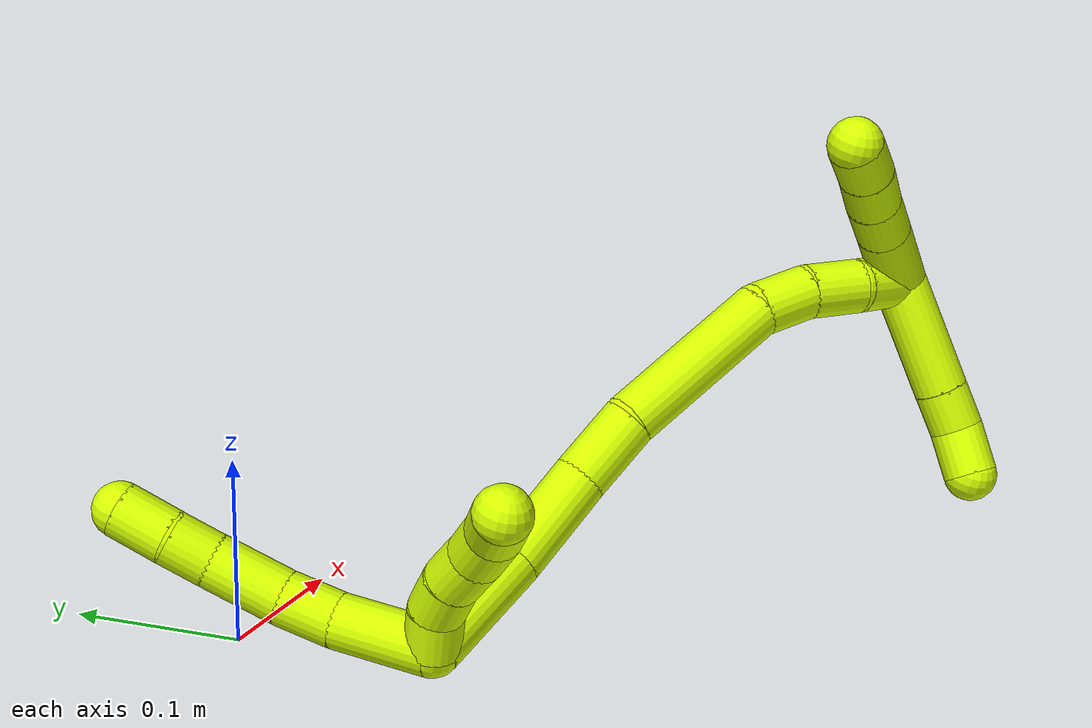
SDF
<sdf version="1.7">
 <world name="default">
  <model name="15">
   <static>0</static>
   <link name="15">
    <collision name="collision-cylinder-e_1_2_8">
     <pose>0.003756 0.021453 -0.003085 -1.71361 0.171584 -0.197861</pose>
     <geometry><cylinder><radius>0.0125</radius><length>0.043994</length></cylinder></geometry>
     <surface>
      <friction><ode><mu>1.16</mu><mu2>1.16</mu2><slip1>0</slip1><slip2>0</slip2></ode></friction>
      <contact><ode><kp>1e+06</kp><kd>1</kd><max_vel>0</max_vel><min_depth>0.001</min_depth></ode></contact>
     </surface>
    </collision>
    <visual name="visual-cylinder-e_1_2_8">
     <pose>0.003756 0.021453 -0.003085 -1.71361 0.171584 -0.197861</pose>
     <geometry><cylinder><radius>0.0125</radius><length>0.043994</length></cylinder></geometry>
     <material><ambient>0.835294 1 0 1</ambient></material>
    </visual>
    <collision name="collision-cylinder-e_2_8_9">
     <pose>0.008989 0.055665 -0.005696 -1.53371 0.115206 -0.11102</pose>
     <geometry><cylinder><radius>0.0125</radius><length>0.025704</length></cylinder></geometry>
     <surface>
      <friction><ode><mu>1.16</mu><mu2>1.16</mu2><slip1>0</slip1><slip2>0</slip2></ode></friction>
      <contact><ode><kp>1e+06</kp><kd>1</kd><max_vel>0</max_vel><min_depth>0.001</min_depth></ode></contact>
     </surface>
    </collision>
    <visual name="visual-cylinder-e_2_8_9">
     <pose>0.008989 0.055665 -0.005696 -1.53371 0.115206 -0.11102</pose>
     <geometry><cylinder><radius>0.0125</radius><length>0.025704</length></cylinder></geometry>
     <material><ambient>0.835294 1 0 1</ambient></material>
    </visual>
    <collision name="collision-cylinder-e_3_9_10">
     <pose>0.011753 0.085491 -0.002351 -1.40409 0.074189 -0.062756</pose>
     <geometry><cylinder><radius>0.0125</radius><length>0.034712</length></cylinder></geometry>
     <surface>
      <friction><ode><mu>1.16</mu><mu2>1.16</mu2><slip1>0</slip1><slip2>0</slip2></ode></friction>
      <contact><ode><kp>1e+06</kp><kd>1</kd><max_vel>0</max_vel><min_depth>0.001</min_depth></ode></contact>
     </surface>
    </collision>
    <visual name="visual-cylinder-e_3_9_10">
     <pose>0.011753 0.085491 -0.002351 -1.40409 0.074189 -0.062756</pose>
     <geometry><cylinder><radius>0.0125</radius><length>0.034712</length></cylinder></geometry>
     <material><ambient>0.835294 1 0 1</ambient></material>
    </visual>
    <collision name="collision-cylinder-e_4_10_11">
     <pose>0.012704 0.112626 0.00327 -1.30423 -0.032145 0.024545</pose>
     <geometry><cylinder><radius>0.0125</radius><length>0.020881</length></cylinder></geometry>
     <surface>
      <friction><ode><mu>1.16</mu><mu2>1.16</mu2><slip1>0</slip1><slip2>0</slip2></ode></friction>
      <contact><ode><kp>1e+06</kp><kd>1</kd><max_vel>0</max_vel><min_depth>0.001</min_depth></ode></contact>
     </surface>
    </collision>
    <visual name="visual-cylinder-e_4_10_11">
     <pose>0.012704 0.112626 0.00327 -1.30423 -0.032145 0.024545</pose>
     <geometry><cylinder><radius>0.0125</radius><length>0.020881</length></cylinder></geometry>
     <material><ambient>0.835294 1 0 1</ambient></material>
    </visual>
    <collision name="collision-cylinder-e_5_11_6">
     <pose>0.013619 0.134772 0.008286 -1.38523 0.101435 -0.084188</pose>
     <geometry><cylinder><radius>0.0125</radius><length>0.024709</length></cylinder></geometry>
     <surface>
      <friction><ode><mu>1.16</mu><mu2>1.16</mu2><slip1>0</slip1><slip2>0</slip2></ode></friction>
      <contact><ode><kp>1e+06</kp><kd>1</kd><max_vel>0</max_vel><min_depth>0.001</min_depth></ode></contact>
     </surface>
    </collision>
    <visual name="visual-cylinder-e_5_11_6">
     <pose>0.013619 0.134772 0.008286 -1.38523 0.101435 -0.084188</pose>
     <geometry><cylinder><radius>0.0125</radius><length>0.024709</length></cylinder></geometry>
     <material><ambient>0.835294 1 0 1</ambient></material>
    </visual>
    <collision name="collision-cylinder-e_1_2_12">
     <pose>-0.000443 0.001052 0.009935 -0.105538 -0.044275 0.002339</pose>
     <geometry><cylinder><radius>0.0125</radius><length>0.02</length></cylinder></geometry>
     <surface>
      <friction><ode><mu>1.16</mu><mu2>1.16</mu2><slip1>0</slip1><slip2>0</slip2></ode></friction>
      <contact><ode><kp>1e+06</kp><kd>1</kd><max_vel>0</max_vel><min_depth>0.001</min_depth></ode></contact>
     </surface>
    </collision>
    <visual name="visual-cylinder-e_1_2_12">
     <pose>-0.000443 0.001052 0.009935 -0.105538 -0.044275 0.002339</pose>
     <geometry><cylinder><radius>0.0125</radius><length>0.02</length></cylinder></geometry>
     <material><ambient>0.835294 1 0 1</ambient></material>
    </visual>
    <collision name="collision-cylinder-e_2_12_13">
     <pose>-0.002987 0.000169 0.029452 0.199292 -0.21179 -0.021253</pose>
     <geometry><cylinder><radius>0.0125</radius><length>0.02</length></cylinder></geometry>
     <surface>
      <friction><ode><mu>1.16</mu><mu2>1.16</mu2><slip1>0</slip1><slip2>0</slip2></ode></friction>
      <contact><ode><kp>1e+06</kp><kd>1</kd><max_vel>0</max_vel><min_depth>0.001</min_depth></ode></contact>
     </surface>
    </collision>
    <visual name="visual-cylinder-e_2_12_13">
     <pose>-0.002987 0.000169 0.029452 0.199292 -0.21179 -0.021253</pose>
     <geometry><cylinder><radius>0.0125</radius><length>0.02</length></cylinder></geometry>
     <material><ambient>0.835294 1 0 1</ambient></material>
    </visual>
    <collision name="collision-cylinder-e_3_13_14">
     <pose>-0.007268 -0.005521 0.048044 0.394937 -0.219622 -0.044111</pose>
     <geometry><cylinder><radius>0.0125</radius><length>0.02</length></cylinder></geometry>
     <surface>
      <friction><ode><mu>1.16</mu><mu2>1.16</mu2><slip1>0</slip1><slip2>0</slip2></ode></friction>
      <contact><ode><kp>1e+06</kp><kd>1</kd><max_vel>0</max_vel><min_depth>0.001</min_depth></ode></contact>
     </surface>
    </collision>
    <visual name="visual-cylinder-e_3_13_14">
     <pose>-0.007268 -0.005521 0.048044 0.394937 -0.219622 -0.044111</pose>
     <geometry><cylinder><radius>0.0125</radius><length>0.02</length></cylinder></geometry>
     <material><ambient>0.835294 1 0 1</ambient></material>
    </visual>
    <collision name="collision-cylinder-e_4_14_15">
     <pose>-0.012886 -0.012083 0.066013 0.303478 -0.351078 -0.05423</pose>
     <geometry><cylinder><radius>0.0125</radius><length>0.02</length></cylinder></geometry>
     <surface>
      <friction><ode><mu>1.16</mu><mu2>1.16</mu2><slip1>0</slip1><slip2>0</slip2></ode></friction>
      <contact><ode><kp>1e+06</kp><kd>1</kd><max_vel>0</max_vel><min_depth>0.001</min_depth></ode></contact>
     </surface>
    </collision>
    <visual name="visual-cylinder-e_4_14_15">
     <pose>-0.012886 -0.012083 0.066013 0.303478 -0.351078 -0.05423</pose>
     <geometry><cylinder><radius>0.0125</radius><length>0.02</length></cylinder></geometry>
     <material><ambient>0.835294 1 0 1</ambient></material>
    </visual>
    <collision name="collision-cylinder-e_5_15_5">
     <pose>-0.022118 -0.016129 0.08303 0.152793 -0.617908 -0.048853</pose>
     <geometry><cylinder><radius>0.0125</radius><length>0.02</length></cylinder></geometry>
     <surface>
      <friction><ode><mu>1.16</mu><mu2>1.16</mu2><slip1>0</slip1><slip2>0</slip2></ode></friction>
      <contact><ode><kp>1e+06</kp><kd>1</kd><max_vel>0</max_vel><min_depth>0.001</min_depth></ode></contact>
     </surface>
    </collision>
    <visual name="visual-cylinder-e_5_15_5">
     <pose>-0.022118 -0.016129 0.08303 0.152793 -0.617908 -0.048853</pose>
     <geometry><cylinder><radius>0.0125</radius><length>0.02</length></cylinder></geometry>
     <material><ambient>0.835294 1 0 1</ambient></material>
    </visual>
    <collision name="collision-cylinder-e_1_2_16">
     <pose>0.023472 -0.010215 0.011472 0.727483 0.991315 0.405981</pose>
     <geometry><cylinder><radius>0.0125</radius><length>0.056104</length></cylinder></geometry>
     <surface>
      <friction><ode><mu>1.16</mu><mu2>1.16</mu2><slip1>0</slip1><slip2>0</slip2></ode></friction>
      <contact><ode><kp>1e+06</kp><kd>1</kd><max_vel>0</max_vel><min_depth>0.001</min_depth></ode></contact>
     </surface>
    </collision>
    <visual name="visual-cylinder-e_1_2_16">
     <pose>0.023472 -0.010215 0.011472 0.727483 0.991315 0.405981</pose>
     <geometry><cylinder><radius>0.0125</radius><length>0.056104</length></cylinder></geometry>
     <material><ambient>0.835294 1 0 1</ambient></material>
    </visual>
    <collision name="collision-cylinder-e_2_16_17">
     <pose>0.063758 -0.028817 0.037531 0.521831 0.785006 0.220175</pose>
     <geometry><cylinder><radius>0.0125</radius><length>0.047572</length></cylinder></geometry>
     <surface>
      <friction><ode><mu>1.16</mu><mu2>1.16</mu2><slip1>0</slip1><slip2>0</slip2></ode></friction>
      <contact><ode><kp>1e+06</kp><kd>1</kd><max_vel>0</max_vel><min_depth>0.001</min_depth></ode></contact>
     </surface>
    </collision>
    <visual name="visual-cylinder-e_2_16_17">
     <pose>0.063758 -0.028817 0.037531 0.521831 0.785006 0.220175</pose>
     <geometry><cylinder><radius>0.0125</radius><length>0.047572</length></cylinder></geometry>
     <material><ambient>0.835294 1 0 1</ambient></material>
    </visual>
    <collision name="collision-cylinder-e_3_17_18">
     <pose>0.090845 -0.043917 0.063827 0.520569 0.650659 0.17919</pose>
     <geometry><cylinder><radius>0.0125</radius><length>0.033925</length></cylinder></geometry>
     <surface>
      <friction><ode><mu>1.16</mu><mu2>1.16</mu2><slip1>0</slip1><slip2>0</slip2></ode></friction>
      <contact><ode><kp>1e+06</kp><kd>1</kd><max_vel>0</max_vel><min_depth>0.001</min_depth></ode></contact>
     </surface>
    </collision>
    <visual name="visual-cylinder-e_3_17_18">
     <pose>0.090845 -0.043917 0.063827 0.520569 0.650659 0.17919</pose>
     <geometry><cylinder><radius>0.0125</radius><length>0.033925</length></cylinder></geometry>
     <material><ambient>0.835294 1 0 1</ambient></material>
    </visual>
    <collision name="collision-cylinder-e_4_18_19">
     <pose>0.129001 -0.071076 0.097041 0.760143 0.75429 0.313883</pose>
     <geometry><cylinder><radius>0.0125</radius><length>0.081436</length></cylinder></geometry>
     <surface>
      <friction><ode><mu>1.16</mu><mu2>1.16</mu2><slip1>0</slip1><slip2>0</slip2></ode></friction>
      <contact><ode><kp>1e+06</kp><kd>1</kd><max_vel>0</max_vel><min_depth>0.001</min_depth></ode></contact>
     </surface>
    </collision>
    <visual name="visual-cylinder-e_4_18_19">
     <pose>0.129001 -0.071076 0.097041 0.760143 0.75429 0.313883</pose>
     <geometry><cylinder><radius>0.0125</radius><length>0.081436</length></cylinder></geometry>
     <material><ambient>0.835294 1 0 1</ambient></material>
    </visual>
    <collision name="collision-cylinder-e_5_19_20">
     <pose>0.16505 -0.101001 0.122513 1.17451 0.671482 0.456425</pose>
     <geometry><cylinder><radius>0.0125</radius><length>0.026251</length></cylinder></geometry>
     <surface>
      <friction><ode><mu>1.16</mu><mu2>1.16</mu2><slip1>0</slip1><slip2>0</slip2></ode></friction>
      <contact><ode><kp>1e+06</kp><kd>1</kd><max_vel>0</max_vel><min_depth>0.001</min_depth></ode></contact>
     </surface>
    </collision>
    <visual name="visual-cylinder-e_5_19_20">
     <pose>0.16505 -0.101001 0.122513 1.17451 0.671482 0.456425</pose>
     <geometry><cylinder><radius>0.0125</radius><length>0.026251</length></cylinder></geometry>
     <material><ambient>0.835294 1 0 1</ambient></material>
    </visual>
    <collision name="collision-cylinder-e_6_20_21">
     <pose>0.180519 -0.121527 0.128209 1.41549 0.578626 0.498768</pose>
     <geometry><cylinder><radius>0.0125</radius><length>0.026709</length></cylinder></geometry>
     <surface>
      <friction><ode><mu>1.16</mu><mu2>1.16</mu2><slip1>0</slip1><slip2>0</slip2></ode></friction>
      <contact><ode><kp>1e+06</kp><kd>1</kd><max_vel>0</max_vel><min_depth>0.001</min_depth></ode></contact>
     </surface>
    </collision>
    <visual name="visual-cylinder-e_6_20_21">
     <pose>0.180519 -0.121527 0.128209 1.41549 0.578626 0.498768</pose>
     <geometry><cylinder><radius>0.0125</radius><length>0.026709</length></cylinder></geometry>
     <material><ambient>0.835294 1 0 1</ambient></material>
    </visual>
    <collision name="collision-cylinder-e_7_21_1">
     <pose>0.198049 -0.142137 0.129927 1.572 0.818862 0.819738</pose>
     <geometry><cylinder><radius>0.0125</radius><length>0.028003</length></cylinder></geometry>
     <surface>
      <friction><ode><mu>1.16</mu><mu2>1.16</mu2><slip1>0</slip1><slip2>0</slip2></ode></friction>
      <contact><ode><kp>1e+06</kp><kd>1</kd><max_vel>0</max_vel><min_depth>0.001</min_depth></ode></contact>
     </surface>
    </collision>
    <visual name="visual-cylinder-e_7_21_1">
     <pose>0.198049 -0.142137 0.129927 1.572 0.818862 0.819738</pose>
     <geometry><cylinder><radius>0.0125</radius><length>0.028003</length></cylinder></geometry>
     <material><ambient>0.835294 1 0 1</ambient></material>
    </visual>
    <collision name="collision-cylinder-e_1_1_22">
     <pose>0.198868 -0.14387 0.144447 -0.494253 -0.517982 0.133482</pose>
     <geometry><cylinder><radius>0.0125</radius><length>0.037999</length></cylinder></geometry>
     <surface>
      <friction><ode><mu>1.16</mu><mu2>1.16</mu2><slip1>0</slip1><slip2>0</slip2></ode></friction>
      <contact><ode><kp>1e+06</kp><kd>1</kd><max_vel>0</max_vel><min_depth>0.001</min_depth></ode></contact>
     </surface>
    </collision>
    <visual name="visual-cylinder-e_1_1_22">
     <pose>0.198868 -0.14387 0.144447 -0.494253 -0.517982 0.133482</pose>
     <geometry><cylinder><radius>0.0125</radius><length>0.037999</length></cylinder></geometry>
     <material><ambient>0.835294 1 0 1</ambient></material>
    </visual>
    <collision name="collision-cylinder-e_2_22_23">
     <pose>0.184054 -0.13164 0.167044 -0.499379 -0.531949 0.138722</pose>
     <geometry><cylinder><radius>0.0125</radius><length>0.021321</length></cylinder></geometry>
     <surface>
      <friction><ode><mu>1.16</mu><mu2>1.16</mu2><slip1>0</slip1><slip2>0</slip2></ode></friction>
      <contact><ode><kp>1e+06</kp><kd>1</kd><max_vel>0</max_vel><min_depth>0.001</min_depth></ode></contact>
     </surface>
    </collision>
    <visual name="visual-cylinder-e_2_22_23">
     <pose>0.184054 -0.13164 0.167044 -0.499379 -0.531949 0.138722</pose>
     <geometry><cylinder><radius>0.0125</radius><length>0.021321</length></cylinder></geometry>
     <material><ambient>0.835294 1 0 1</ambient></material>
    </visual>
    <collision name="collision-cylinder-e_3_23_24">
     <pose>0.17344 -0.123469 0.183052 -0.44333 -0.534608 0.123281</pose>
     <geometry><cylinder><radius>0.0125</radius><length>0.020437</length></cylinder></geometry>
     <surface>
      <friction><ode><mu>1.16</mu><mu2>1.16</mu2><slip1>0</slip1><slip2>0</slip2></ode></friction>
      <contact><ode><kp>1e+06</kp><kd>1</kd><max_vel>0</max_vel><min_depth>0.001</min_depth></ode></contact>
     </surface>
    </collision>
    <visual name="visual-cylinder-e_3_23_24">
     <pose>0.17344 -0.123469 0.183052 -0.44333 -0.534608 0.123281</pose>
     <geometry><cylinder><radius>0.0125</radius><length>0.020437</length></cylinder></geometry>
     <material><ambient>0.835294 1 0 1</ambient></material>
    </visual>
    <collision name="collision-cylinder-e_4_24_4">
     <pose>0.163046 -0.115331 0.19851 -0.52628 -0.538159 0.148304</pose>
     <geometry><cylinder><radius>0.0125</radius><length>0.020243</length></cylinder></geometry>
     <surface>
      <friction><ode><mu>1.16</mu><mu2>1.16</mu2><slip1>0</slip1><slip2>0</slip2></ode></friction>
      <contact><ode><kp>1e+06</kp><kd>1</kd><max_vel>0</max_vel><min_depth>0.001</min_depth></ode></contact>
     </surface>
    </collision>
    <visual name="visual-cylinder-e_4_24_4">
     <pose>0.163046 -0.115331 0.19851 -0.52628 -0.538159 0.148304</pose>
     <geometry><cylinder><radius>0.0125</radius><length>0.020243</length></cylinder></geometry>
     <material><ambient>0.835294 1 0 1</ambient></material>
    </visual>
    <collision name="collision-cylinder-e_1_1_25">
     <pose>0.20314 -0.168751 0.108283 2.4741 -0.184299 -0.520958</pose>
     <geometry><cylinder><radius>0.0125</radius><length>0.056037</length></cylinder></geometry>
     <surface>
      <friction><ode><mu>1.16</mu><mu2>1.16</mu2><slip1>0</slip1><slip2>0</slip2></ode></friction>
      <contact><ode><kp>1e+06</kp><kd>1</kd><max_vel>0</max_vel><min_depth>0.001</min_depth></ode></contact>
     </surface>
    </collision>
    <visual name="visual-cylinder-e_1_1_25">
     <pose>0.20314 -0.168751 0.108283 2.4741 -0.184299 -0.520958</pose>
     <geometry><cylinder><radius>0.0125</radius><length>0.056037</length></cylinder></geometry>
     <material><ambient>0.835294 1 0 1</ambient></material>
    </visual>
    <collision name="collision-cylinder-e_2_25_26">
     <pose>0.196256 -0.192247 0.078552 2.46933 -0.167483 -0.471548</pose>
     <geometry><cylinder><radius>0.0125</radius><length>0.020997</length></cylinder></geometry>
     <surface>
      <friction><ode><mu>1.16</mu><mu2>1.16</mu2><slip1>0</slip1><slip2>0</slip2></ode></friction>
      <contact><ode><kp>1e+06</kp><kd>1</kd><max_vel>0</max_vel><min_depth>0.001</min_depth></ode></contact>
     </surface>
    </collision>
    <visual name="visual-cylinder-e_2_25_26">
     <pose>0.196256 -0.192247 0.078552 2.46933 -0.167483 -0.471548</pose>
     <geometry><cylinder><radius>0.0125</radius><length>0.020997</length></cylinder></geometry>
     <material><ambient>0.835294 1 0 1</ambient></material>
    </visual>
    <collision name="collision-cylinder-e_3_26_3">
     <pose>0.189178 -0.204859 0.062361 2.49045 -0.482435 -1.2595</pose>
     <geometry><cylinder><radius>0.0125</radius><length>0.022967</length></cylinder></geometry>
     <surface>
      <friction><ode><mu>1.16</mu><mu2>1.16</mu2><slip1>0</slip1><slip2>0</slip2></ode></friction>
      <contact><ode><kp>1e+06</kp><kd>1</kd><max_vel>0</max_vel><min_depth>0.001</min_depth></ode></contact>
     </surface>
    </collision>
    <visual name="visual-cylinder-e_3_26_3">
     <pose>0.189178 -0.204859 0.062361 2.49045 -0.482435 -1.2595</pose>
     <geometry><cylinder><radius>0.0125</radius><length>0.022967</length></cylinder></geometry>
     <material><ambient>0.835294 1 0 1</ambient></material>
    </visual>
    <collision name="collision-sphere-3">
     <pose>0.18385 -0.211025 0.05427 0 -0 0</pose>
     <geometry><sphere><radius>0.0125</radius></sphere></geometry>
     <surface>
      <friction><ode><mu>1.16</mu><mu2>1.16</mu2><slip1>0</slip1><slip2>0</slip2></ode></friction>
      <contact><ode><kp>1e+06</kp><kd>1</kd><max_vel>0</max_vel><min_depth>0.001</min_depth></ode></contact>
     </surface>
    </collision>
    <visual name="visual-sphere-3">
     <pose>0.18385 -0.211025 0.05427 0 -0 0</pose>
     <geometry><sphere><radius>0.0125</radius></sphere></geometry>
     <material><ambient>0.835294 1 0 1</ambient></material>
    </visual>
    <collision name="collision-sphere-26">
     <pose>0.194506 -0.198693 0.070453 0 -0 0</pose>
     <geometry><sphere><radius>0.0125</radius></sphere></geometry>
     <surface>
      <friction><ode><mu>1.16</mu><mu2>1.16</mu2><slip1>0</slip1><slip2>0</slip2></ode></friction>
      <contact><ode><kp>1e+06</kp><kd>1</kd><max_vel>0</max_vel><min_depth>0.001</min_depth></ode></contact>
     </surface>
    </collision>
    <visual name="visual-sphere-26">
     <pose>0.194506 -0.198693 0.070453 0 -0 0</pose>
     <geometry><sphere><radius>0.0125</radius></sphere></geometry>
     <material><ambient>0.835294 1 0 1</ambient></material>
    </visual>
    <collision name="collision-sphere-25">
     <pose>0.198006 -0.185801 0.086651 0 -0 0</pose>
     <geometry><sphere><radius>0.0125</radius></sphere></geometry>
     <surface>
      <friction><ode><mu>1.16</mu><mu2>1.16</mu2><slip1>0</slip1><slip2>0</slip2></ode></friction>
      <contact><ode><kp>1e+06</kp><kd>1</kd><max_vel>0</max_vel><min_depth>0.001</min_depth></ode></contact>
     </surface>
    </collision>
    <visual name="visual-sphere-25">
     <pose>0.198006 -0.185801 0.086651 0 -0 0</pose>
     <geometry><sphere><radius>0.0125</radius></sphere></geometry>
     <material><ambient>0.835294 1 0 1</ambient></material>
    </visual>
    <collision name="collision-sphere-4">
     <pose>0.157858 -0.110966 0.206025 0 -0 0</pose>
     <geometry><sphere><radius>0.0125</radius></sphere></geometry>
     <surface>
      <friction><ode><mu>1.16</mu><mu2>1.16</mu2><slip1>0</slip1><slip2>0</slip2></ode></friction>
      <contact><ode><kp>1e+06</kp><kd>1</kd><max_vel>0</max_vel><min_depth>0.001</min_depth></ode></contact>
     </surface>
    </collision>
    <visual name="visual-sphere-4">
     <pose>0.157858 -0.110966 0.206025 0 -0 0</pose>
     <geometry><sphere><radius>0.0125</radius></sphere></geometry>
     <material><ambient>0.835294 1 0 1</ambient></material>
    </visual>
    <collision name="collision-sphere-24">
     <pose>0.168234 -0.119697 0.190995 0 -0 0</pose>
     <geometry><sphere><radius>0.0125</radius></sphere></geometry>
     <surface>
      <friction><ode><mu>1.16</mu><mu2>1.16</mu2><slip1>0</slip1><slip2>0</slip2></ode></friction>
      <contact><ode><kp>1e+06</kp><kd>1</kd><max_vel>0</max_vel><min_depth>0.001</min_depth></ode></contact>
     </surface>
    </collision>
    <visual name="visual-sphere-24">
     <pose>0.168234 -0.119697 0.190995 0 -0 0</pose>
     <geometry><sphere><radius>0.0125</radius></sphere></geometry>
     <material><ambient>0.835294 1 0 1</ambient></material>
    </visual>
    <collision name="collision-sphere-23">
     <pose>0.178646 -0.12724 0.175109 0 -0 0</pose>
     <geometry><sphere><radius>0.0125</radius></sphere></geometry>
     <surface>
      <friction><ode><mu>1.16</mu><mu2>1.16</mu2><slip1>0</slip1><slip2>0</slip2></ode></friction>
      <contact><ode><kp>1e+06</kp><kd>1</kd><max_vel>0</max_vel><min_depth>0.001</min_depth></ode></contact>
     </surface>
    </collision>
    <visual name="visual-sphere-23">
     <pose>0.178646 -0.12724 0.175109 0 -0 0</pose>
     <geometry><sphere><radius>0.0125</radius></sphere></geometry>
     <material><ambient>0.835294 1 0 1</ambient></material>
    </visual>
    <collision name="collision-sphere-22">
     <pose>0.189461 -0.13604 0.158978 0 -0 0</pose>
     <geometry><sphere><radius>0.0125</radius></sphere></geometry>
     <surface>
      <friction><ode><mu>1.16</mu><mu2>1.16</mu2><slip1>0</slip1><slip2>0</slip2></ode></friction>
      <contact><ode><kp>1e+06</kp><kd>1</kd><max_vel>0</max_vel><min_depth>0.001</min_depth></ode></contact>
     </surface>
    </collision>
    <visual name="visual-sphere-22">
     <pose>0.189461 -0.13604 0.158978 0 -0 0</pose>
     <geometry><sphere><radius>0.0125</radius></sphere></geometry>
     <material><ambient>0.835294 1 0 1</ambient></material>
    </visual>
    <collision name="collision-sphere-1">
     <pose>0.208275 -0.151701 0.129915 0 -0 0</pose>
     <geometry><sphere><radius>0.0125</radius></sphere></geometry>
     <surface>
      <friction><ode><mu>1.16</mu><mu2>1.16</mu2><slip1>0</slip1><slip2>0</slip2></ode></friction>
      <contact><ode><kp>1e+06</kp><kd>1</kd><max_vel>0</max_vel><min_depth>0.001</min_depth></ode></contact>
     </surface>
    </collision>
    <visual name="visual-sphere-1">
     <pose>0.208275 -0.151701 0.129915 0 -0 0</pose>
     <geometry><sphere><radius>0.0125</radius></sphere></geometry>
     <material><ambient>0.835294 1 0 1</ambient></material>
    </visual>
    <collision name="collision-sphere-21">
     <pose>0.187822 -0.132573 0.129938 0 -0 0</pose>
     <geometry><sphere><radius>0.0125</radius></sphere></geometry>
     <surface>
      <friction><ode><mu>1.16</mu><mu2>1.16</mu2><slip1>0</slip1><slip2>0</slip2></ode></friction>
      <contact><ode><kp>1e+06</kp><kd>1</kd><max_vel>0</max_vel><min_depth>0.001</min_depth></ode></contact>
     </surface>
    </collision>
    <visual name="visual-sphere-21">
     <pose>0.187822 -0.132573 0.129938 0 -0 0</pose>
     <geometry><sphere><radius>0.0125</radius></sphere></geometry>
     <material><ambient>0.835294 1 0 1</ambient></material>
    </visual>
    <collision name="collision-sphere-6">
     <pose>0.01487 0.146852 0.010554 0 -0 0</pose>
     <geometry><sphere><radius>0.0125</radius></sphere></geometry>
     <surface>
      <friction><ode><mu>1.16</mu><mu2>1.16</mu2><slip1>0</slip1><slip2>0</slip2></ode></friction>
      <contact><ode><kp>1e+06</kp><kd>1</kd><max_vel>0</max_vel><min_depth>0.001</min_depth></ode></contact>
     </surface>
    </collision>
    <visual name="visual-sphere-6">
     <pose>0.01487 0.146852 0.010554 0 -0 0</pose>
     <geometry><sphere><radius>0.0125</radius></sphere></geometry>
     <material><ambient>0.835294 1 0 1</ambient></material>
    </visual>
    <collision name="collision-sphere-11">
     <pose>0.012368 0.122692 0.006019 0 -0 0</pose>
     <geometry><sphere><radius>0.0125</radius></sphere></geometry>
     <surface>
      <friction><ode><mu>1.16</mu><mu2>1.16</mu2><slip1>0</slip1><slip2>0</slip2></ode></friction>
      <contact><ode><kp>1e+06</kp><kd>1</kd><max_vel>0</max_vel><min_depth>0.001</min_depth></ode></contact>
     </surface>
    </collision>
    <visual name="visual-sphere-11">
     <pose>0.012368 0.122692 0.006019 0 -0 0</pose>
     <geometry><sphere><radius>0.0125</radius></sphere></geometry>
     <material><ambient>0.835294 1 0 1</ambient></material>
    </visual>
    <collision name="collision-sphere-10">
     <pose>0.013039 0.102559 0.000521 0 -0 0</pose>
     <geometry><sphere><radius>0.0125</radius></sphere></geometry>
     <surface>
      <friction><ode><mu>1.16</mu><mu2>1.16</mu2><slip1>0</slip1><slip2>0</slip2></ode></friction>
      <contact><ode><kp>1e+06</kp><kd>1</kd><max_vel>0</max_vel><min_depth>0.001</min_depth></ode></contact>
     </surface>
    </collision>
    <visual name="visual-sphere-10">
     <pose>0.013039 0.102559 0.000521 0 -0 0</pose>
     <geometry><sphere><radius>0.0125</radius></sphere></geometry>
     <material><ambient>0.835294 1 0 1</ambient></material>
    </visual>
    <collision name="collision-sphere-9">
     <pose>0.010466 0.068423 -0.005223 0 -0 0</pose>
     <geometry><sphere><radius>0.0125</radius></sphere></geometry>
     <surface>
      <friction><ode><mu>1.16</mu><mu2>1.16</mu2><slip1>0</slip1><slip2>0</slip2></ode></friction>
      <contact><ode><kp>1e+06</kp><kd>1</kd><max_vel>0</max_vel><min_depth>0.001</min_depth></ode></contact>
     </surface>
    </collision>
    <visual name="visual-sphere-9">
     <pose>0.010466 0.068423 -0.005223 0 -0 0</pose>
     <geometry><sphere><radius>0.0125</radius></sphere></geometry>
     <material><ambient>0.835294 1 0 1</ambient></material>
    </visual>
    <collision name="collision-sphere-2">
     <geometry><sphere><radius>0.0125</radius></sphere></geometry>
     <surface>
      <friction><ode><mu>1.16</mu><mu2>1.16</mu2><slip1>0</slip1><slip2>0</slip2></ode></friction>
      <contact><ode><kp>1e+06</kp><kd>1</kd><max_vel>0</max_vel><min_depth>0.001</min_depth></ode></contact>
     </surface>
    </collision>
    <visual name="visual-sphere-2">
     <geometry><sphere><radius>0.0125</radius></sphere></geometry>
     <material><ambient>0.835294 1 0 1</ambient></material>
    </visual>
    <collision name="collision-sphere-19">
     <pose>0.156884 -0.091521 0.118546 0 -0 0</pose>
     <geometry><sphere><radius>0.0125</radius></sphere></geometry>
     <surface>
      <friction><ode><mu>1.16</mu><mu2>1.16</mu2><slip1>0</slip1><slip2>0</slip2></ode></friction>
      <contact><ode><kp>1e+06</kp><kd>1</kd><max_vel>0</max_vel><min_depth>0.001</min_depth></ode></contact>
     </surface>
    </collision>
    <visual name="visual-sphere-19">
     <pose>0.156884 -0.091521 0.118546 0 -0 0</pose>
     <geometry><sphere><radius>0.0125</radius></sphere></geometry>
     <material><ambient>0.835294 1 0 1</ambient></material>
    </visual>
    <collision name="collision-sphere-8">
     <pose>0.007512 0.042907 -0.00617 0 -0 0</pose>
     <geometry><sphere><radius>0.0125</radius></sphere></geometry>
     <surface>
      <friction><ode><mu>1.16</mu><mu2>1.16</mu2><slip1>0</slip1><slip2>0</slip2></ode></friction>
      <contact><ode><kp>1e+06</kp><kd>1</kd><max_vel>0</max_vel><min_depth>0.001</min_depth></ode></contact>
     </surface>
    </collision>
    <visual name="visual-sphere-8">
     <pose>0.007512 0.042907 -0.00617 0 -0 0</pose>
     <geometry><sphere><radius>0.0125</radius></sphere></geometry>
     <material><ambient>0.835294 1 0 1</ambient></material>
    </visual>
    <collision name="collision-sphere-12">
     <pose>-0.000885 0.002105 0.019869 0 -0 0</pose>
     <geometry><sphere><radius>0.0125</radius></sphere></geometry>
     <surface>
      <friction><ode><mu>1.16</mu><mu2>1.16</mu2><slip1>0</slip1><slip2>0</slip2></ode></friction>
      <contact><ode><kp>1e+06</kp><kd>1</kd><max_vel>0</max_vel><min_depth>0.001</min_depth></ode></contact>
     </surface>
    </collision>
    <visual name="visual-sphere-12">
     <pose>-0.000885 0.002105 0.019869 0 -0 0</pose>
     <geometry><sphere><radius>0.0125</radius></sphere></geometry>
     <material><ambient>0.835294 1 0 1</ambient></material>
    </visual>
    <collision name="collision-sphere-13">
     <pose>-0.005089 -0.001766 0.039035 0 -0 0</pose>
     <geometry><sphere><radius>0.0125</radius></sphere></geometry>
     <surface>
      <friction><ode><mu>1.16</mu><mu2>1.16</mu2><slip1>0</slip1><slip2>0</slip2></ode></friction>
      <contact><ode><kp>1e+06</kp><kd>1</kd><max_vel>0</max_vel><min_depth>0.001</min_depth></ode></contact>
     </surface>
    </collision>
    <visual name="visual-sphere-13">
     <pose>-0.005089 -0.001766 0.039035 0 -0 0</pose>
     <geometry><sphere><radius>0.0125</radius></sphere></geometry>
     <material><ambient>0.835294 1 0 1</ambient></material>
    </visual>
    <collision name="collision-sphere-14">
     <pose>-0.009447 -0.009276 0.057052 0 -0 0</pose>
     <geometry><sphere><radius>0.0125</radius></sphere></geometry>
     <surface>
      <friction><ode><mu>1.16</mu><mu2>1.16</mu2><slip1>0</slip1><slip2>0</slip2></ode></friction>
      <contact><ode><kp>1e+06</kp><kd>1</kd><max_vel>0</max_vel><min_depth>0.001</min_depth></ode></contact>
     </surface>
    </collision>
    <visual name="visual-sphere-14">
     <pose>-0.009447 -0.009276 0.057052 0 -0 0</pose>
     <geometry><sphere><radius>0.0125</radius></sphere></geometry>
     <material><ambient>0.835294 1 0 1</ambient></material>
    </visual>
    <collision name="collision-sphere-15">
     <pose>-0.016325 -0.014889 0.074974 0 -0 0</pose>
     <geometry><sphere><radius>0.0125</radius></sphere></geometry>
     <surface>
      <friction><ode><mu>1.16</mu><mu2>1.16</mu2><slip1>0</slip1><slip2>0</slip2></ode></friction>
      <contact><ode><kp>1e+06</kp><kd>1</kd><max_vel>0</max_vel><min_depth>0.001</min_depth></ode></contact>
     </surface>
    </collision>
    <visual name="visual-sphere-15">
     <pose>-0.016325 -0.014889 0.074974 0 -0 0</pose>
     <geometry><sphere><radius>0.0125</radius></sphere></geometry>
     <material><ambient>0.835294 1 0 1</ambient></material>
    </visual>
    <collision name="collision-sphere-5">
     <pose>-0.027911 -0.01737 0.091086 0 -0 0</pose>
     <geometry><sphere><radius>0.0125</radius></sphere></geometry>
     <surface>
      <friction><ode><mu>1.16</mu><mu2>1.16</mu2><slip1>0</slip1><slip2>0</slip2></ode></friction>
      <contact><ode><kp>1e+06</kp><kd>1</kd><max_vel>0</max_vel><min_depth>0.001</min_depth></ode></contact>
     </surface>
    </collision>
    <visual name="visual-sphere-5">
     <pose>-0.027911 -0.01737 0.091086 0 -0 0</pose>
     <geometry><sphere><radius>0.0125</radius></sphere></geometry>
     <material><ambient>0.835294 1 0 1</ambient></material>
    </visual>
    <collision name="collision-sphere-16">
     <pose>0.046945 -0.02043 0.022945 0 -0 0</pose>
     <geometry><sphere><radius>0.0125</radius></sphere></geometry>
     <surface>
      <friction><ode><mu>1.16</mu><mu2>1.16</mu2><slip1>0</slip1><slip2>0</slip2></ode></friction>
      <contact><ode><kp>1e+06</kp><kd>1</kd><max_vel>0</max_vel><min_depth>0.001</min_depth></ode></contact>
     </surface>
    </collision>
    <visual name="visual-sphere-16">
     <pose>0.046945 -0.02043 0.022945 0 -0 0</pose>
     <geometry><sphere><radius>0.0125</radius></sphere></geometry>
     <material><ambient>0.835294 1 0 1</ambient></material>
    </visual>
    <collision name="collision-sphere-17">
     <pose>0.08057 -0.037204 0.052118 0 -0 0</pose>
     <geometry><sphere><radius>0.0125</radius></sphere></geometry>
     <surface>
      <friction><ode><mu>1.16</mu><mu2>1.16</mu2><slip1>0</slip1><slip2>0</slip2></ode></friction>
      <contact><ode><kp>1e+06</kp><kd>1</kd><max_vel>0</max_vel><min_depth>0.001</min_depth></ode></contact>
     </surface>
    </collision>
    <visual name="visual-sphere-17">
     <pose>0.08057 -0.037204 0.052118 0 -0 0</pose>
     <geometry><sphere><radius>0.0125</radius></sphere></geometry>
     <material><ambient>0.835294 1 0 1</ambient></material>
    </visual>
    <collision name="collision-sphere-18">
     <pose>0.101119 -0.05063 0.075535 0 -0 0</pose>
     <geometry><sphere><radius>0.0125</radius></sphere></geometry>
     <surface>
      <friction><ode><mu>1.16</mu><mu2>1.16</mu2><slip1>0</slip1><slip2>0</slip2></ode></friction>
      <contact><ode><kp>1e+06</kp><kd>1</kd><max_vel>0</max_vel><min_depth>0.001</min_depth></ode></contact>
     </surface>
    </collision>
    <visual name="visual-sphere-18">
     <pose>0.101119 -0.05063 0.075535 0 -0 0</pose>
     <geometry><sphere><radius>0.0125</radius></sphere></geometry>
     <material><ambient>0.835294 1 0 1</ambient></material>
    </visual>
    <collision name="collision-sphere-20">
     <pose>0.173216 -0.110481 0.126479 0 -0 0</pose>
     <geometry><sphere><radius>0.0125</radius></sphere></geometry>
     <surface>
      <friction><ode><mu>1.16</mu><mu2>1.16</mu2><slip1>0</slip1><slip2>0</slip2></ode></friction>
      <contact><ode><kp>1e+06</kp><kd>1</kd><max_vel>0</max_vel><min_depth>0.001</min_depth></ode></contact>
     </surface>
    </collision>
    <visual name="visual-sphere-20">
     <pose>0.173216 -0.110481 0.126479 0 -0 0</pose>
     <geometry><sphere><radius>0.0125</radius></sphere></geometry>
     <material><ambient>0.835294 1 0 1</ambient></material>
    </visual>
    <inertial>
     <pose>0.095072 -0.053407 0.071165 0 -0 0</pose>
     <mass>0.75</mass>
     <inertia><ixx>0.000127</ixx><ixy>0</ixy><ixz>0</ixz><iyy>8.5e-05</iyy><iyz>0</iyz><izz>-4e-06</izz></inertia>
    </inertial>
   </link>
   <pose>-0.16117 -0.183901 0.08471 0.255263 -0.204538 0.158525</pose>
  </model>
 </world>
</sdf>
